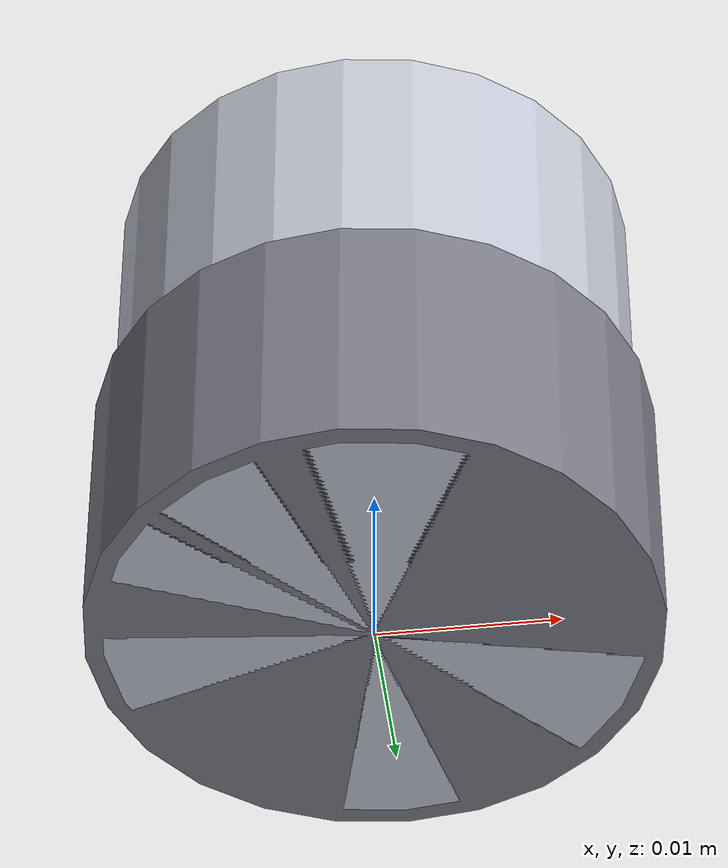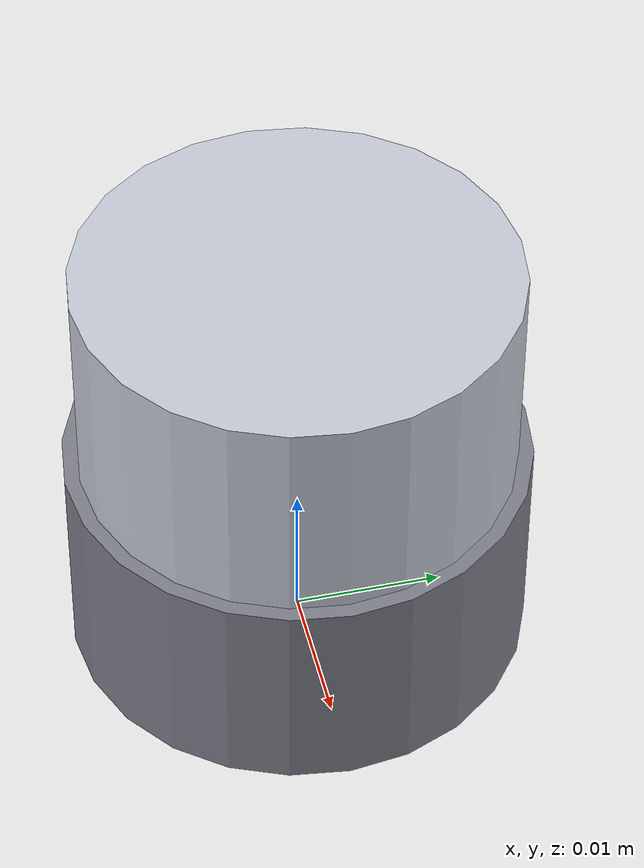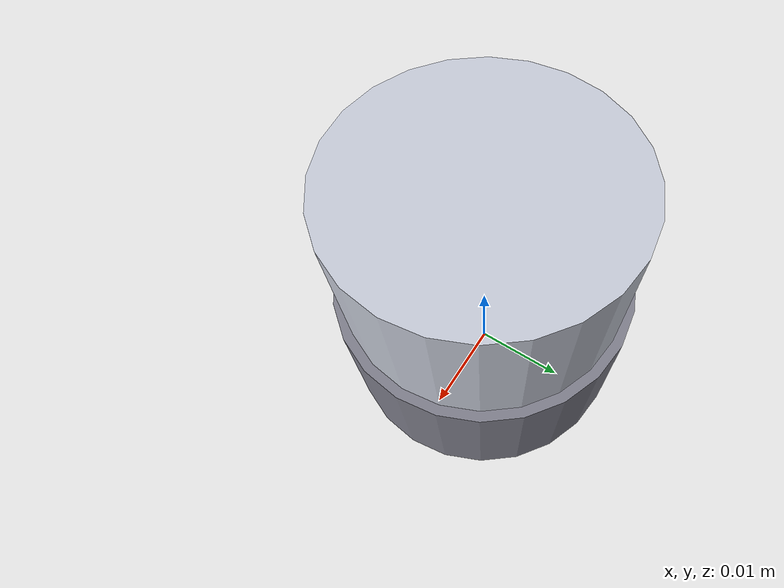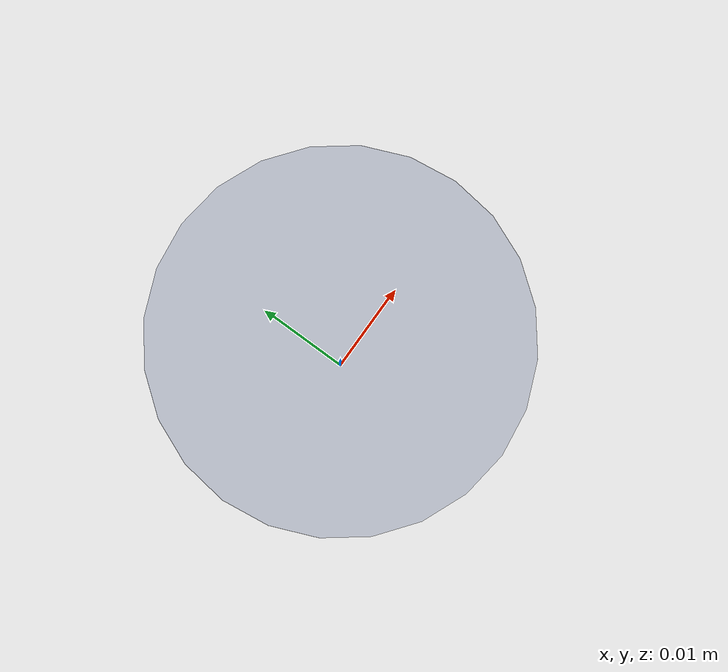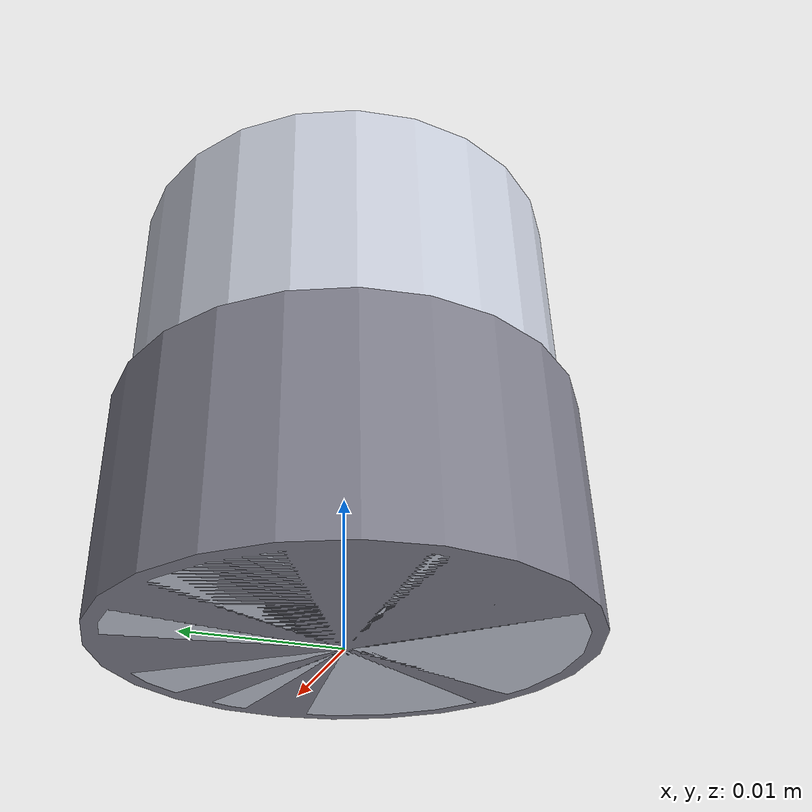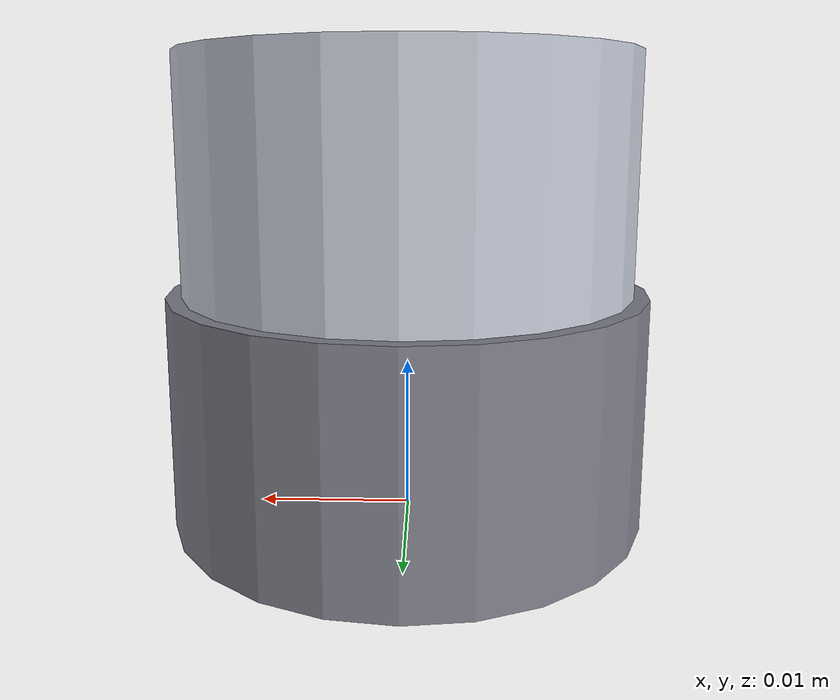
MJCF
<mujoco model="Knob_11">
  <asset>
    <material name="Knob_11_base" rgba="0.5 0.5 0.55 1"/>
    <material name="Knob_11_button" rgba="0.78 0.80 0.85 1"/>
  </asset>
  <worldbody>
    <body name="Knob_11">
      <geom name="Knob_11_base" type="cylinder"
            pos="0 0 0.0075" size="0.0155 0.0075"
            material="Knob_11_base"/>
      <geom name="Knob_11_button" type="cylinder"
            pos="0 0 0.015" size="0.0145 0.015"
            material="Knob_11_button"/>
    </body>
  </worldbody>
</mujoco>
